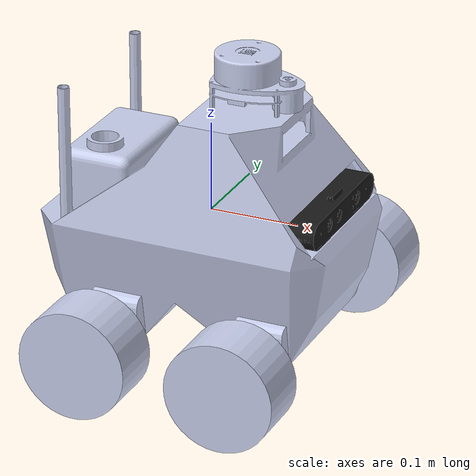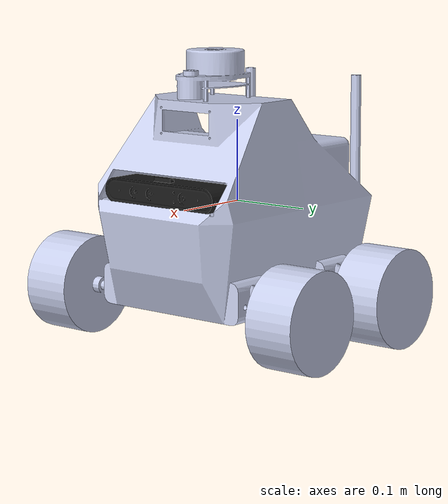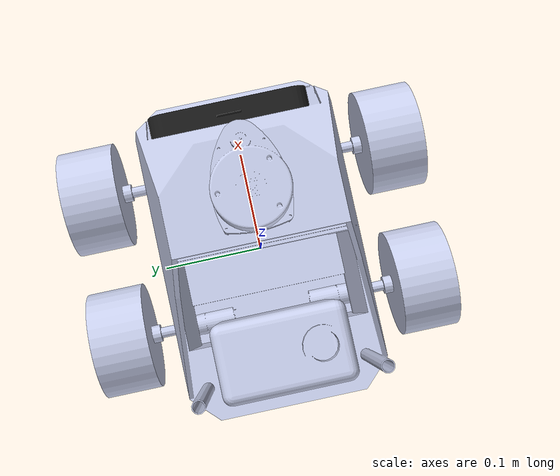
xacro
<?xml version="1.0"?>
<robot xmlns:xacro="http://www.ros.org/wiki/xacro"  name="robot">

    <xacro:arg name="use_ros2_control" default="true"/>
    <xacro:arg name="sim_mode" default="false"/>

    <xacro:include filename="robot2.xacro" />
    <xacro:include filename="lidar.xacro" />
    <xacro:include filename="camera.xacro" />
    <!--xacro:include filename="control_arduino.xacro" /-->

</robot>

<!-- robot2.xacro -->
<robot xmlns:xacro="http://www.ros.org/wiki/xacro" >

   <!-- BASE LINK -->

    <link name="base_link">

    </link>

    <!-- BASE_FOOTPRINT LINK -->

    <joint name="base_footprint_joint" type="fixed">
        <parent link="base_link"/>
        <child link="base_footprint"/>
        <origin xyz="0 0 0" rpy="0 0 0"/>
    </joint>

    <link name="base_footprint">
    </link>

  <joint name="chassis_joint" type="fixed">
        <parent link="base_link"/>
        <child link="chassis_link"/>
        <origin xyz="0 0 0"/>
    </joint>

  <link
    name="chassis_link">
    <inertial>
      <origin
        xyz="-0.0024404 -2.0665E-05 -0.036093"
        rpy="0 0 0" />
      <mass
        value="3.563" />
      <inertia
        ixx="0.019027"
        ixy="-2.526E-10"
        ixz="0.00063662"
        iyy="0.011957"
        iyz="6.1119E-06"
        izz="0.020595" />
    </inertial>
    <visual>
      <origin
        xyz="0 0 0"
        rpy="0 0 0" />
      <geometry>
        <mesh
          filename="package://robo2/meshes/base_link.STL" />
      </geometry>
      <material
        name="">
        <color
          rgba="0.79216 0.81961 0.93333 1" />
      </material>
    </visual>
    <collision>
      <origin
        xyz="0 0 0"
        rpy="0 0 0" />
      <geometry>
        <mesh
          filename="package://robo2/meshes/base_link.STL" />
      </geometry>
    </collision>
  </link>

  <link
    name="rueda_izq_arriba">
    <inertial>
      <origin
        xyz="2.7756E-17 2.7756E-17 -0.031817"
        rpy="0 0 0" />
      <mass
        value="0.72984" />
      <inertia
        ixx="0.00091283"
        ixy="-4.1103E-20"
        ixz="1.43E-20"
        iyy="0.00091283"
        iyz="-5.6001E-20"
        izz="0.001326" />
    </inertial>
    <visual>
      <origin
        xyz="0 0 0"
        rpy="0 0 0" />
      <geometry>
        <mesh
          filename="package://robo2/meshes/rueda_izq_arriba.STL" />
      </geometry>
      <material
        name="">
        <color
          rgba="0.79216 0.81961 0.93333 1" />
      </material>
    </visual>
    <collision>
      <origin
        xyz="0 0 0"
        rpy="0 0 0" />
      <geometry>
        <mesh
          filename="package://robo2/meshes/rueda_izq_arriba.STL" />
      </geometry>
    </collision>
  </link>
  <joint
    name="rueda_izq_arriba_joint"
    type="continuous">
    <origin
      xyz="0.10092 0.20435 -0.107"
      rpy="-1.5708 0 0" />
    <parent
      link="chassis_link" />
    <child
      link="rueda_izq_arriba" />
    <axis
      xyz="0 0 1" />
  </joint>
  <link
    name="rueda_izq_abajo">
    <inertial>
      <origin
        xyz="1.3878E-17 -6.9389E-18 -0.031817"
        rpy="0 0 0" />
      <mass
        value="0.72984" />
      <inertia
        ixx="0.00091283"
        ixy="1.3848E-21"
        ixz="4.073E-21"
        iyy="0.00091283"
        iyz="2.5739E-20"
        izz="0.001326" />
    </inertial>
    <visual>
      <origin
        xyz="0 0 0"
        rpy="0 0 0" />
      <geometry>
        <mesh
          filename="package://robo2/meshes/rueda_izq_abajo.STL" />
      </geometry>
      <material
        name="">
        <color
          rgba="0.79216 0.81961 0.93333 1" />
      </material>
    </visual>
    <collision>
      <origin
        xyz="0 0 0"
        rpy="0 0 0" />
      <geometry>
        <mesh
          filename="package://robo2/meshes/rueda_izq_abajo.STL" />
      </geometry>
    </collision>
  </link>
  <joint
    name="rueda_izq_abajo_joint"
    type="continuous">
    <origin
      xyz="-0.065951 0.20435 -0.107"
      rpy="-1.5708 0 0" />
    <parent
      link="chassis_link" />
    <child
      link="rueda_izq_abajo" />
    <axis
      xyz="0 0 1" />
  </joint>
  <link
    name="rueda_der_abajo">
    <inertial>
      <origin
        xyz="-9.7145E-17 -6.9389E-18 -0.031817"
        rpy="0 0 0" />
      <mass
        value="0.72984" />
      <inertia
        ixx="0.00091283"
        ixy="1.6304E-19"
        ixz="-5.3591E-20"
        iyy="0.00091283"
        iyz="-9.375E-20"
        izz="0.001326" />
    </inertial>
    <visual>
      <origin
        xyz="0 0 0"
        rpy="0 0 0" />
      <geometry>
        <mesh
          filename="package://robo2/meshes/rueda_der_abajo.STL" />
      </geometry>
      <material
        name="">
        <color
          rgba="0.79216 0.81961 0.93333 1" />
      </material>
    </visual>
    <collision>
      <origin
        xyz="0 0 0"
        rpy="0 0 0" />
      <geometry>
        <mesh
          filename="package://robo2/meshes/rueda_der_abajo.STL" />
      </geometry>
    </collision>
  </link>
  <joint
    name="rueda_der_abajo_joint"
    type="continuous">
    <origin
      xyz="-0.065951 -0.20435 -0.107"
      rpy="1.5708 0 0" />
    <parent
      link="chassis_link" />
    <child
      link="rueda_der_abajo" />
    <axis
      xyz="0 0 -1" />
  </joint>
  <link
    name="rueda_der_arriba">
    <inertial>
      <origin
        xyz="0 -6.9389E-18 -0.031817"
        rpy="0 0 0" />
      <mass
        value="0.72984" />
      <inertia
        ixx="0.00091283"
        ixy="-7.5158E-20"
        ixz="-3.6325E-20"
        iyy="0.00091283"
        iyz="-1.7327E-20"
        izz="0.001326" />
    </inertial>
    <visual>
      <origin
        xyz="0 0 0"
        rpy="0 0 0" />
      <geometry>
        <mesh
          filename="package://robo2/meshes/rueda_der_arriba.STL" />
      </geometry>
      <material
        name="">
        <color
          rgba="0.79216 0.81961 0.93333 1" />
      </material>
    </visual>
    <collision>
      <origin
        xyz="0 0 0"
        rpy="0 0 0" />
      <geometry>
        <mesh
          filename="package://robo2/meshes/rueda_der_arriba.STL" />
      </geometry>
    </collision>
  </link>
  <joint
    name="rueda_der_arriba_joint"
    type="continuous">
    <origin
      xyz="0.10092 -0.20435 -0.107"
      rpy="1.5708 0 0" />
    <parent
      link="chassis_link" />
    <child
      link="rueda_der_arriba" />
    <axis
      xyz="0 0 -1" />
  </joint>
  <link
    name="lidar">
    <inertial>
      <origin
        xyz="-0.0074835 -9.1926E-05 0.010668"
        rpy="0 0 0" />
      <mass
        value="1.3308" />
      <inertia
        ixx="0.00061492"
        ixy="-8.0198E-07"
        ixz="0.00015824"
        iyy="0.0009607"
        iyz="-3.0916E-06"
        izz="0.0010982" />
    </inertial>
    <visual>
      <origin
        xyz="0 0 0"
        rpy="0 0 0" />
      <geometry>
        <mesh
          filename="package://robo2/meshes/lidar.STL" />
      </geometry>
      <material
        name="">
        <color
          rgba="0.79216 0.81961 0.93333 1" />
      </material>
    </visual>
    <collision>
      <origin
        xyz="0 0 0"
        rpy="0 0 0" />
      <geometry>
        <mesh
          filename="package://robo2/meshes/lidar.STL" />
      </geometry>
    </collision>
  </link>
  <joint
    name="lidar_joint"
    type="fixed">
    <origin
      xyz="0.056196 0 0.1546"
      rpy="0 0 0" />
    <parent
      link="chassis_link" />
    <child
      link="lidar" />
    <axis
      xyz="0 0 0" />
    <limit
      lower="0"
      upper="0"
      effort="0"
      velocity="0" />
  </joint>

</robot>

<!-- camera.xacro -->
<robot xmlns:xacro="http://www.ros.org/wiki/xacro" >

  <link
    name="camera_link">
    <inertial>
      <origin
        xyz="-0.020011 1.2856E-05 8.9877E-05"
        rpy="0 0 0" />
      <mass
        value="0.18253" />
      <inertia
        ixx="0.00039627"
        ixy="-4.5059E-08"
        ixz="-4.4703E-08"
        iyy="3.5987E-05"
        iyz="2.0205E-09"
        izz="0.0004052" />
    </inertial>
    <visual>
      <origin
        xyz="0 0 0"
        rpy="0 0 0" />
      <geometry>
        <mesh
          filename="package://robo2/meshes/camera_link.STL" />
      </geometry>
      <material
        name="">
        <color
          rgba="0.10196 0.10196 0.10196 1" />
      </material>
    </visual>
    <collision>
      <origin
        xyz="0 0 0"
        rpy="0 0 0" />
      <geometry>
        <mesh
          filename="package://robo2/meshes/camera_link.STL" />
      </geometry>
    </collision>
  </link>
  <joint
    name="camera_joint"
    type="fixed">
    <origin
      xyz="0.1515 0.0035877 0.025"
      rpy="0 0 0" />
    <parent
      link="base_link" />
    <child
      link="camera_link" />
    <axis
      xyz="0 0 0" />
  </joint>

  <joint
    name="camera_optical_joint"
    type="fixed">
    <origin
      xyz="0 0 0"
      rpy="${-pi/2} 0 ${-pi/2}" />
    <parent
      link="camera_link" />
    <child
      link="camera_link_optical" />
    <axis
      xyz="0 0 0" />
  </joint>

  <link
    name="camera_link_optical">

  </link>

  <gazebo reference="camera_link">
      <sensor name="camera" type="camera">
      <visualize>true</visualize>
        <update_rate>30</update_rate>
        <camera>
          <horizontal_fov>1.207</horizontal_fov>
          <image>
            <width>1920</width>
            <height>1080</height>
            <format>R8G8B8</format>
          </image>
          <clip>
            <near>0.02</near>
            <far>300</far>
          </clip>

        </camera>

        <plugin filename="libgazebo_ros_camera.so" name="camera_controller">
          <robotNamespace/>
          <alwaysOn>true</alwaysOn>
          <updateRate>0.0</updateRate>
          <cameraName>camera</cameraName>
          <imageTopicName>camera_image_raw</imageTopicName>
          <cameraInfoTopicName>camera_info</cameraInfoTopicName>
          <frameName>camera_link_optical</frameName>
          <hackBaseline>0.07</hackBaseline>
        </plugin>
      </sensor>
    </gazebo>
</robot>
